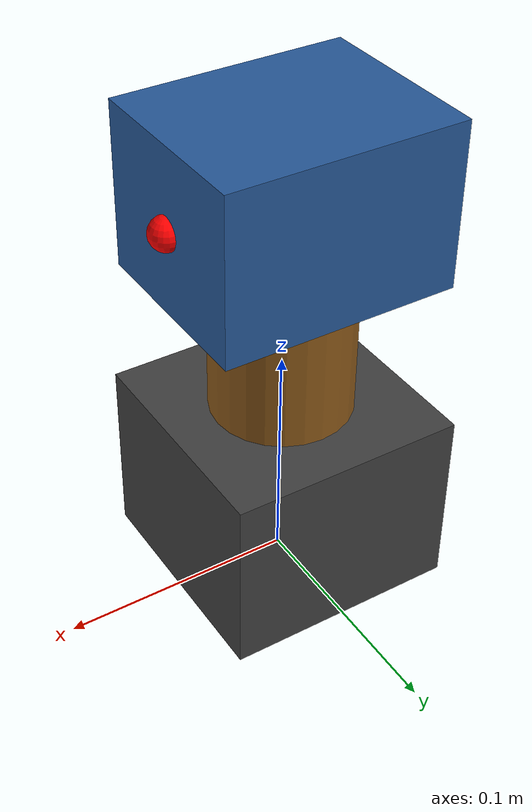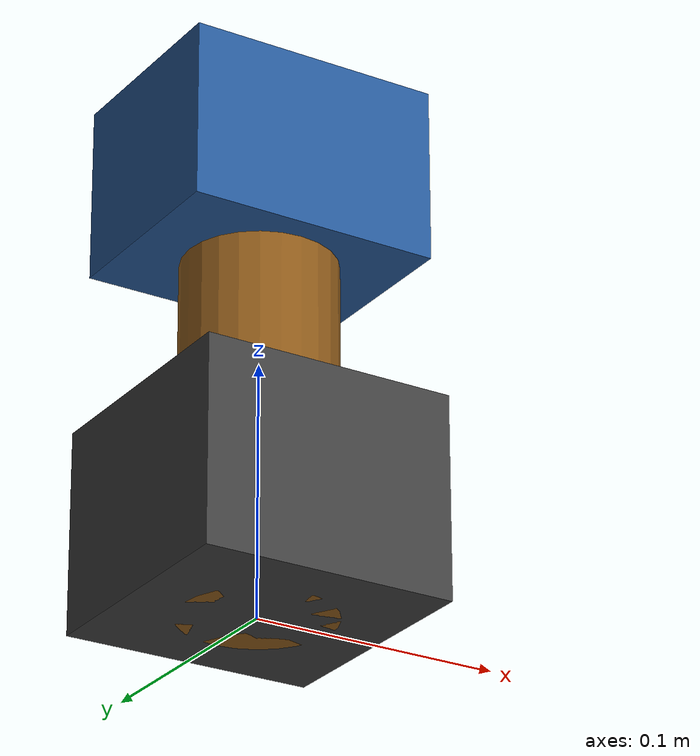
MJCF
<mujoco model="pan_tilt">
    <compiler angle="radian" autolimits="true"/>
    <option integrator="implicitfast"/>

    <default>
        <joint armature="0.5" damping="2"/>
        <general forcerange="-10 10"/>
    </default>

    <worldbody>

        <!-- Base plate: fixed anchor -->
        <body name="base" pos="0 0 0">
            <geom type="box" size="0.05 0.05 0.04" pos="0 0 0.04" rgba="0.25 0.25 0.25 1" mass="0.5"/>

            <!-- Pan link: rotates around Z (yaw).-->
            <body name="link_1" pos="0 0 0.08">
                <joint name="pan_joint" type="hinge" axis="0 0 1" range="-2.78 2.78"/>
                <geom type="cylinder" size="0.03 0.08" pos="0 0 0" rgba="0.55 0.35 0.1 1" mass="0.3"/>

                <!-- Tilt link: rotates around Y (tilt). -->
                <body name="link_2" pos="0 0 0.06">
                    <joint name="tilt_joint" type="hinge" axis="0 -1 0" range="-1.57 1.57"/>
                    <geom type="box" size="0.05 0.04 0.035" pos="0 0 0.035" rgba="0.15 0.35 0.6 1" mass="0.5"/>

                    <!--Mono centered camera -->
                    <camera name="head_cam" pos="0.05 0 0.035" euler="1.5708 -1.5708 0" fovy="60"/>
                    <!-- stereo pair -->
                    <camera name="head_cam_left"  pos="0.05  0.0315 0.035" euler="1.5708 -1.5708 0" fovy="60"/>
                    <camera name="head_cam_right" pos="0.05 -0.0315 0.035" euler="1.5708 -1.5708 0" fovy="60"/>

                    <site name="camera_site" pos="0.05 0 0.035" size="0.007" rgba="1 0 0 1"/>
                </body>
            </body>
        </body>
    </worldbody>

    <actuator>
        <motor name="pan_joint"  joint="pan_joint"  forcerange="-10 10" ctrlrange="-10 10"/>
        <motor name="tilt_joint" joint="tilt_joint" forcerange="-10 10" ctrlrange="-10 10"/>
    </actuator>

    <contact>
        <exclude body1="base"   body2="link_1"/>
        <exclude body1="link_1" body2="link_2"/>
    </contact>

</mujoco>
